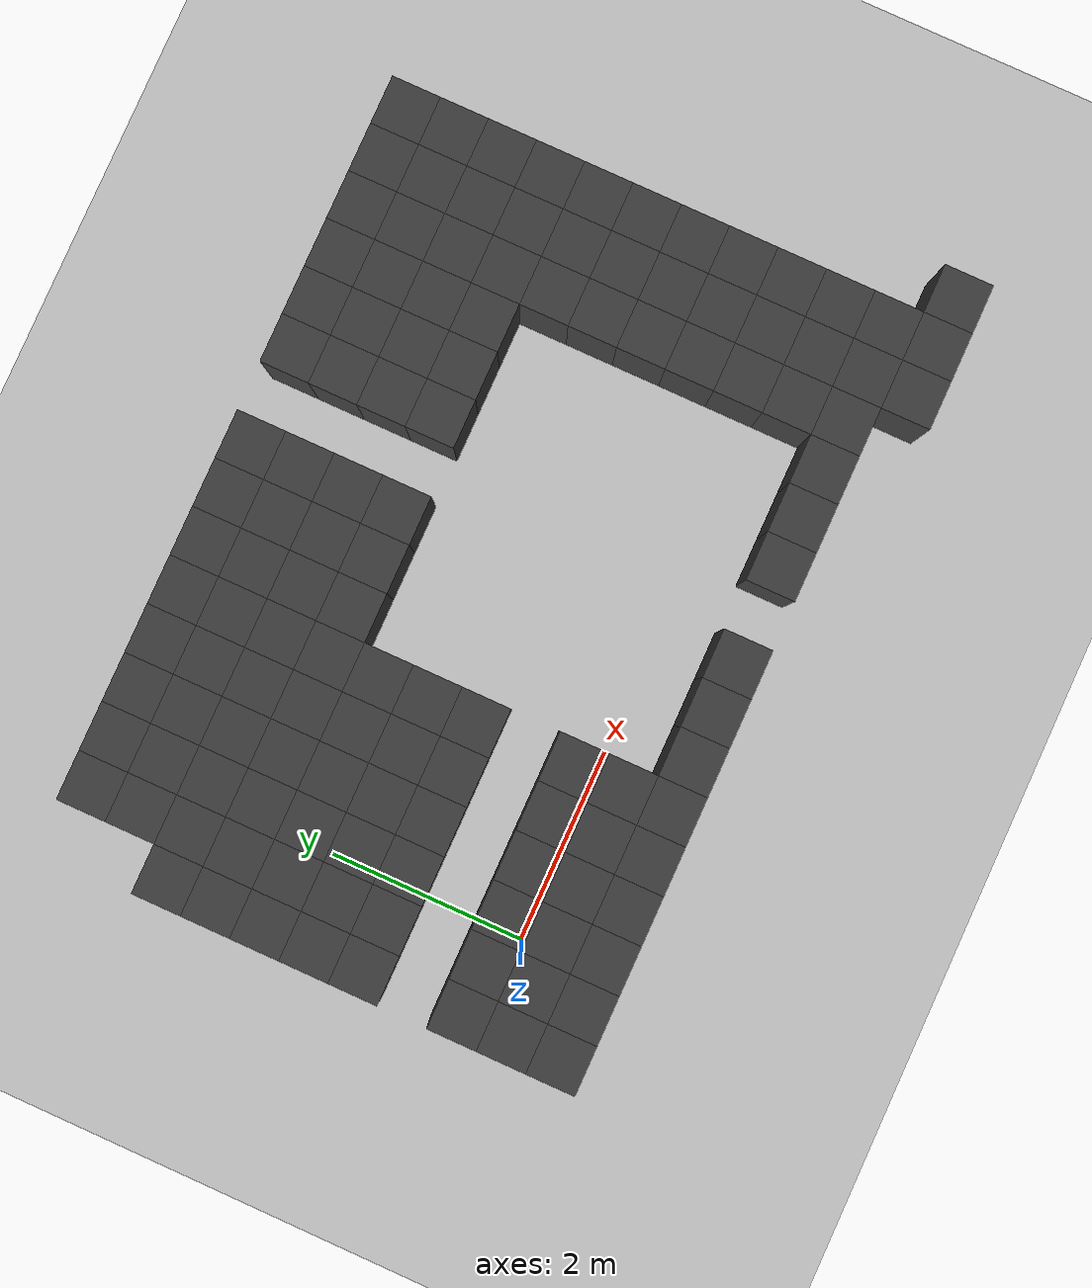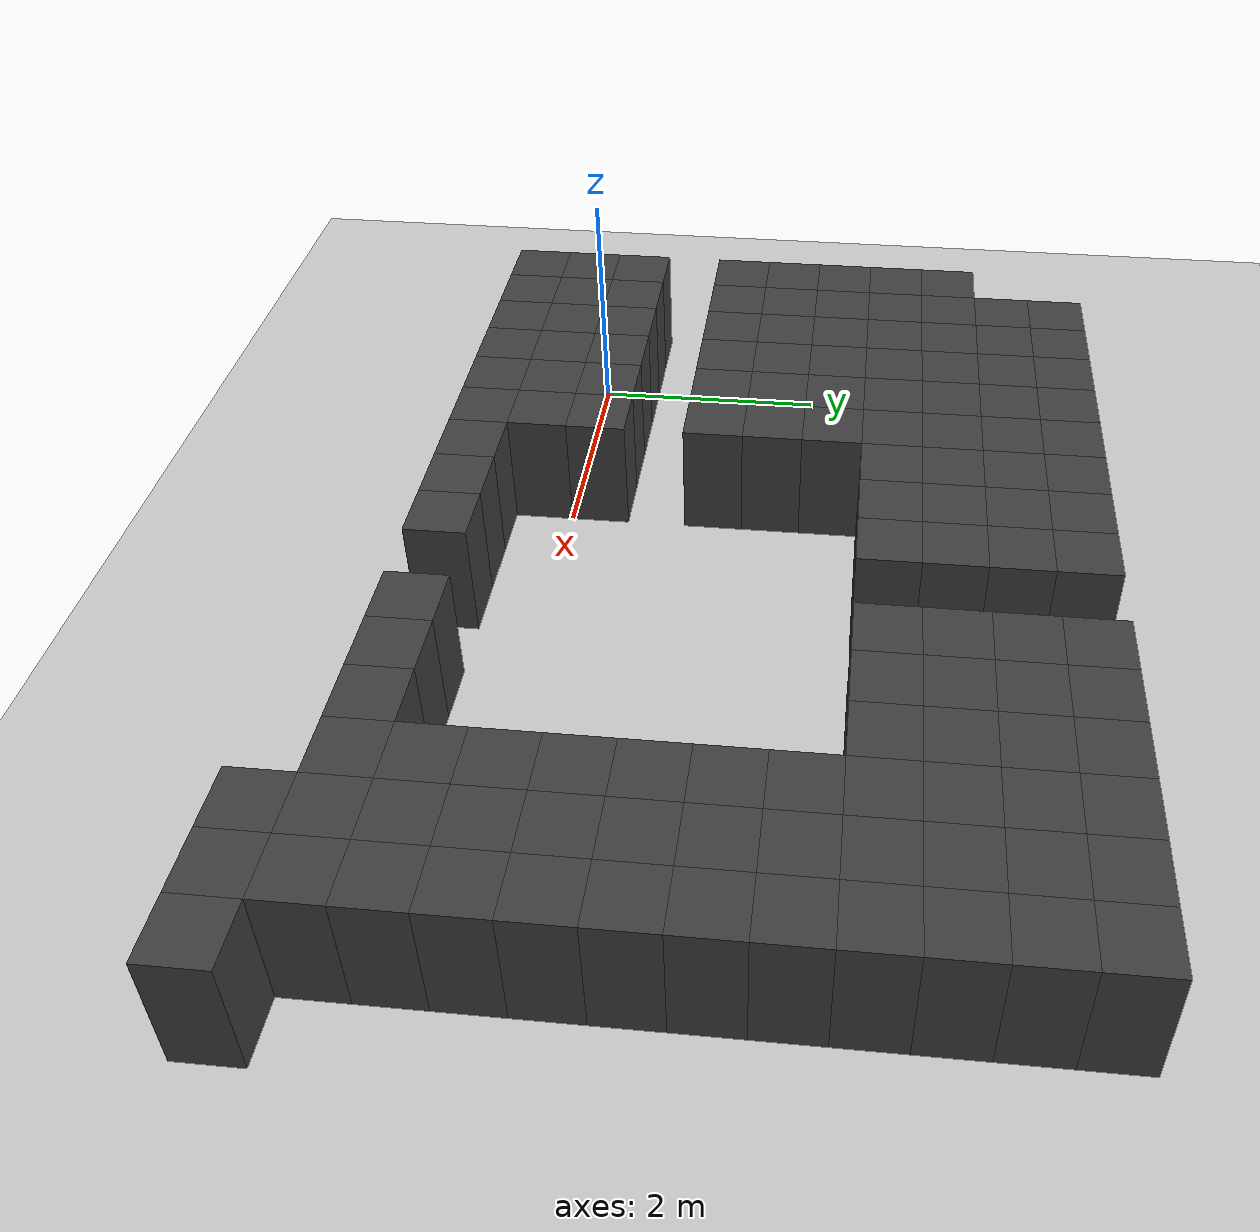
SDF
<sdf version="1.7">
 <world name="map_10726">
  <model name="ground_plane">
   <static>true</static>
   <link name="link">
    <collision name="collision">
     <geometry><plane><normal>0 0 1</normal><size>200 200</size></plane></geometry>
    </collision>
    <visual name="visual">
     <geometry><plane><normal>0 0 1</normal><size>200 200</size></plane></geometry>
     <material><ambient>0.8 0.8 0.8 1</ambient><diffuse>0.8 0.8 0.8 1</diffuse></material>
    </visual>
   </link>
  </model>
  <model name="maze_environment">
   <static>true</static>
   <link name="wall_751">
    <pose>-0.250 4.250 0.500 0 0 0</pose>
    <collision name="col"><geometry><box><size>0.5 0.5 1.0</size></box></geometry></collision>
    <visual name="vis">
     <geometry><box><size>0.5 0.5 1.0</size></box></geometry>
     <material><ambient>0.15 0.15 0.15 1</ambient><diffuse>0.25 0.25 0.25 1</diffuse></material>
    </visual>
   </link>
   <link name="wall_752">
    <pose>0.250 4.250 0.500 0 0 0</pose>
    <collision name="col"><geometry><box><size>0.5 0.5 1.0</size></box></geometry></collision>
    <visual name="vis">
     <geometry><box><size>0.5 0.5 1.0</size></box></geometry>
     <material><ambient>0.15 0.15 0.15 1</ambient><diffuse>0.25 0.25 0.25 1</diffuse></material>
    </visual>
   </link>
   <link name="wall_753">
    <pose>0.750 4.250 0.500 0 0 0</pose>
    <collision name="col"><geometry><box><size>0.5 0.5 1.0</size></box></geometry></collision>
    <visual name="vis">
     <geometry><box><size>0.5 0.5 1.0</size></box></geometry>
     <material><ambient>0.15 0.15 0.15 1</ambient><diffuse>0.25 0.25 0.25 1</diffuse></material>
    </visual>
   </link>
   <link name="wall_754">
    <pose>1.250 4.250 0.500 0 0 0</pose>
    <collision name="col"><geometry><box><size>0.5 0.5 1.0</size></box></geometry></collision>
    <visual name="vis">
     <geometry><box><size>0.5 0.5 1.0</size></box></geometry>
     <material><ambient>0.15 0.15 0.15 1</ambient><diffuse>0.25 0.25 0.25 1</diffuse></material>
    </visual>
   </link>
   <link name="wall_755">
    <pose>1.750 4.250 0.500 0 0 0</pose>
    <collision name="col"><geometry><box><size>0.5 0.5 1.0</size></box></geometry></collision>
    <visual name="vis">
     <geometry><box><size>0.5 0.5 1.0</size></box></geometry>
     <material><ambient>0.15 0.15 0.15 1</ambient><diffuse>0.25 0.25 0.25 1</diffuse></material>
    </visual>
   </link>
   <link name="wall_756">
    <pose>2.250 4.250 0.500 0 0 0</pose>
    <collision name="col"><geometry><box><size>0.5 0.5 1.0</size></box></geometry></collision>
    <visual name="vis">
     <geometry><box><size>0.5 0.5 1.0</size></box></geometry>
     <material><ambient>0.15 0.15 0.15 1</ambient><diffuse>0.25 0.25 0.25 1</diffuse></material>
    </visual>
   </link>
   <link name="wall_757">
    <pose>2.750 4.250 0.500 0 0 0</pose>
    <collision name="col"><geometry><box><size>0.5 0.5 1.0</size></box></geometry></collision>
    <visual name="vis">
     <geometry><box><size>0.5 0.5 1.0</size></box></geometry>
     <material><ambient>0.15 0.15 0.15 1</ambient><diffuse>0.25 0.25 0.25 1</diffuse></material>
    </visual>
   </link>
   <link name="wall_758">
    <pose>3.250 4.250 0.500 0 0 0</pose>
    <collision name="col"><geometry><box><size>0.5 0.5 1.0</size></box></geometry></collision>
    <visual name="vis">
     <geometry><box><size>0.5 0.5 1.0</size></box></geometry>
     <material><ambient>0.15 0.15 0.15 1</ambient><diffuse>0.25 0.25 0.25 1</diffuse></material>
    </visual>
   </link>
   <link name="wall_759">
    <pose>4.250 4.250 0.500 0 0 0</pose>
    <collision name="col"><geometry><box><size>0.5 0.5 1.0</size></box></geometry></collision>
    <visual name="vis">
     <geometry><box><size>0.5 0.5 1.0</size></box></geometry>
     <material><ambient>0.15 0.15 0.15 1</ambient><diffuse>0.25 0.25 0.25 1</diffuse></material>
    </visual>
   </link>
   <link name="wall_760">
    <pose>4.750 4.250 0.500 0 0 0</pose>
    <collision name="col"><geometry><box><size>0.5 0.5 1.0</size></box></geometry></collision>
    <visual name="vis">
     <geometry><box><size>0.5 0.5 1.0</size></box></geometry>
     <material><ambient>0.15 0.15 0.15 1</ambient><diffuse>0.25 0.25 0.25 1</diffuse></material>
    </visual>
   </link>
   <link name="wall_761">
    <pose>5.250 4.250 0.500 0 0 0</pose>
    <collision name="col"><geometry><box><size>0.5 0.5 1.0</size></box></geometry></collision>
    <visual name="vis">
     <geometry><box><size>0.5 0.5 1.0</size></box></geometry>
     <material><ambient>0.15 0.15 0.15 1</ambient><diffuse>0.25 0.25 0.25 1</diffuse></material>
    </visual>
   </link>
   <link name="wall_762">
    <pose>5.750 4.250 0.500 0 0 0</pose>
    <collision name="col"><geometry><box><size>0.5 0.5 1.0</size></box></geometry></collision>
    <visual name="vis">
     <geometry><box><size>0.5 0.5 1.0</size></box></geometry>
     <material><ambient>0.15 0.15 0.15 1</ambient><diffuse>0.25 0.25 0.25 1</diffuse></material>
    </visual>
   </link>
   <link name="wall_763">
    <pose>6.250 4.250 0.500 0 0 0</pose>
    <collision name="col"><geometry><box><size>0.5 0.5 1.0</size></box></geometry></collision>
    <visual name="vis">
     <geometry><box><size>0.5 0.5 1.0</size></box></geometry>
     <material><ambient>0.15 0.15 0.15 1</ambient><diffuse>0.25 0.25 0.25 1</diffuse></material>
    </visual>
   </link>
   <link name="wall_764">
    <pose>6.750 4.250 0.500 0 0 0</pose>
    <collision name="col"><geometry><box><size>0.5 0.5 1.0</size></box></geometry></collision>
    <visual name="vis">
     <geometry><box><size>0.5 0.5 1.0</size></box></geometry>
     <material><ambient>0.15 0.15 0.15 1</ambient><diffuse>0.25 0.25 0.25 1</diffuse></material>
    </visual>
   </link>
   <link name="wall_799">
    <pose>-0.250 3.750 0.500 0 0 0</pose>
    <collision name="col"><geometry><box><size>0.5 0.5 1.0</size></box></geometry></collision>
    <visual name="vis">
     <geometry><box><size>0.5 0.5 1.0</size></box></geometry>
     <material><ambient>0.15 0.15 0.15 1</ambient><diffuse>0.25 0.25 0.25 1</diffuse></material>
    </visual>
   </link>
   <link name="wall_800">
    <pose>0.250 3.750 0.500 0 0 0</pose>
    <collision name="col"><geometry><box><size>0.5 0.5 1.0</size></box></geometry></collision>
    <visual name="vis">
     <geometry><box><size>0.5 0.5 1.0</size></box></geometry>
     <material><ambient>0.15 0.15 0.15 1</ambient><diffuse>0.25 0.25 0.25 1</diffuse></material>
    </visual>
   </link>
   <link name="wall_801">
    <pose>0.750 3.750 0.500 0 0 0</pose>
    <collision name="col"><geometry><box><size>0.5 0.5 1.0</size></box></geometry></collision>
    <visual name="vis">
     <geometry><box><size>0.5 0.5 1.0</size></box></geometry>
     <material><ambient>0.15 0.15 0.15 1</ambient><diffuse>0.25 0.25 0.25 1</diffuse></material>
    </visual>
   </link>
   <link name="wall_802">
    <pose>1.250 3.750 0.500 0 0 0</pose>
    <collision name="col"><geometry><box><size>0.5 0.5 1.0</size></box></geometry></collision>
    <visual name="vis">
     <geometry><box><size>0.5 0.5 1.0</size></box></geometry>
     <material><ambient>0.15 0.15 0.15 1</ambient><diffuse>0.25 0.25 0.25 1</diffuse></material>
    </visual>
   </link>
   <link name="wall_803">
    <pose>1.750 3.750 0.500 0 0 0</pose>
    <collision name="col"><geometry><box><size>0.5 0.5 1.0</size></box></geometry></collision>
    <visual name="vis">
     <geometry><box><size>0.5 0.5 1.0</size></box></geometry>
     <material><ambient>0.15 0.15 0.15 1</ambient><diffuse>0.25 0.25 0.25 1</diffuse></material>
    </visual>
   </link>
   <link name="wall_804">
    <pose>2.250 3.750 0.500 0 0 0</pose>
    <collision name="col"><geometry><box><size>0.5 0.5 1.0</size></box></geometry></collision>
    <visual name="vis">
     <geometry><box><size>0.5 0.5 1.0</size></box></geometry>
     <material><ambient>0.15 0.15 0.15 1</ambient><diffuse>0.25 0.25 0.25 1</diffuse></material>
    </visual>
   </link>
   <link name="wall_805">
    <pose>2.750 3.750 0.500 0 0 0</pose>
    <collision name="col"><geometry><box><size>0.5 0.5 1.0</size></box></geometry></collision>
    <visual name="vis">
     <geometry><box><size>0.5 0.5 1.0</size></box></geometry>
     <material><ambient>0.15 0.15 0.15 1</ambient><diffuse>0.25 0.25 0.25 1</diffuse></material>
    </visual>
   </link>
   <link name="wall_806">
    <pose>3.250 3.750 0.500 0 0 0</pose>
    <collision name="col"><geometry><box><size>0.5 0.5 1.0</size></box></geometry></collision>
    <visual name="vis">
     <geometry><box><size>0.5 0.5 1.0</size></box></geometry>
     <material><ambient>0.15 0.15 0.15 1</ambient><diffuse>0.25 0.25 0.25 1</diffuse></material>
    </visual>
   </link>
   <link name="wall_807">
    <pose>4.250 3.750 0.500 0 0 0</pose>
    <collision name="col"><geometry><box><size>0.5 0.5 1.0</size></box></geometry></collision>
    <visual name="vis">
     <geometry><box><size>0.5 0.5 1.0</size></box></geometry>
     <material><ambient>0.15 0.15 0.15 1</ambient><diffuse>0.25 0.25 0.25 1</diffuse></material>
    </visual>
   </link>
   <link name="wall_808">
    <pose>4.750 3.750 0.500 0 0 0</pose>
    <collision name="col"><geometry><box><size>0.5 0.5 1.0</size></box></geometry></collision>
    <visual name="vis">
     <geometry><box><size>0.5 0.5 1.0</size></box></geometry>
     <material><ambient>0.15 0.15 0.15 1</ambient><diffuse>0.25 0.25 0.25 1</diffuse></material>
    </visual>
   </link>
   <link name="wall_809">
    <pose>5.250 3.750 0.500 0 0 0</pose>
    <collision name="col"><geometry><box><size>0.5 0.5 1.0</size></box></geometry></collision>
    <visual name="vis">
     <geometry><box><size>0.5 0.5 1.0</size></box></geometry>
     <material><ambient>0.15 0.15 0.15 1</ambient><diffuse>0.25 0.25 0.25 1</diffuse></material>
    </visual>
   </link>
   <link name="wall_810">
    <pose>5.750 3.750 0.500 0 0 0</pose>
    <collision name="col"><geometry><box><size>0.5 0.5 1.0</size></box></geometry></collision>
    <visual name="vis">
     <geometry><box><size>0.5 0.5 1.0</size></box></geometry>
     <material><ambient>0.15 0.15 0.15 1</ambient><diffuse>0.25 0.25 0.25 1</diffuse></material>
    </visual>
   </link>
   <link name="wall_811">
    <pose>6.250 3.750 0.500 0 0 0</pose>
    <collision name="col"><geometry><box><size>0.5 0.5 1.0</size></box></geometry></collision>
    <visual name="vis">
     <geometry><box><size>0.5 0.5 1.0</size></box></geometry>
     <material><ambient>0.15 0.15 0.15 1</ambient><diffuse>0.25 0.25 0.25 1</diffuse></material>
    </visual>
   </link>
   <link name="wall_812">
    <pose>6.750 3.750 0.500 0 0 0</pose>
    <collision name="col"><geometry><box><size>0.5 0.5 1.0</size></box></geometry></collision>
    <visual name="vis">
     <geometry><box><size>0.5 0.5 1.0</size></box></geometry>
     <material><ambient>0.15 0.15 0.15 1</ambient><diffuse>0.25 0.25 0.25 1</diffuse></material>
    </visual>
   </link>
   <link name="wall_846">
    <pose>-0.750 3.250 0.500 0 0 0</pose>
    <collision name="col"><geometry><box><size>0.5 0.5 1.0</size></box></geometry></collision>
    <visual name="vis">
     <geometry><box><size>0.5 0.5 1.0</size></box></geometry>
     <material><ambient>0.15 0.15 0.15 1</ambient><diffuse>0.25 0.25 0.25 1</diffuse></material>
    </visual>
   </link>
   <link name="wall_847">
    <pose>-0.250 3.250 0.500 0 0 0</pose>
    <collision name="col"><geometry><box><size>0.5 0.5 1.0</size></box></geometry></collision>
    <visual name="vis">
     <geometry><box><size>0.5 0.5 1.0</size></box></geometry>
     <material><ambient>0.15 0.15 0.15 1</ambient><diffuse>0.25 0.25 0.25 1</diffuse></material>
    </visual>
   </link>
   <link name="wall_848">
    <pose>0.250 3.250 0.500 0 0 0</pose>
    <collision name="col"><geometry><box><size>0.5 0.5 1.0</size></box></geometry></collision>
    <visual name="vis">
     <geometry><box><size>0.5 0.5 1.0</size></box></geometry>
     <material><ambient>0.15 0.15 0.15 1</ambient><diffuse>0.25 0.25 0.25 1</diffuse></material>
    </visual>
   </link>
   <link name="wall_849">
    <pose>0.750 3.250 0.500 0 0 0</pose>
    <collision name="col"><geometry><box><size>0.5 0.5 1.0</size></box></geometry></collision>
    <visual name="vis">
     <geometry><box><size>0.5 0.5 1.0</size></box></geometry>
     <material><ambient>0.15 0.15 0.15 1</ambient><diffuse>0.25 0.25 0.25 1</diffuse></material>
    </visual>
   </link>
   <link name="wall_850">
    <pose>1.250 3.250 0.500 0 0 0</pose>
    <collision name="col"><geometry><box><size>0.5 0.5 1.0</size></box></geometry></collision>
    <visual name="vis">
     <geometry><box><size>0.5 0.5 1.0</size></box></geometry>
     <material><ambient>0.15 0.15 0.15 1</ambient><diffuse>0.25 0.25 0.25 1</diffuse></material>
    </visual>
   </link>
   <link name="wall_851">
    <pose>1.750 3.250 0.500 0 0 0</pose>
    <collision name="col"><geometry><box><size>0.5 0.5 1.0</size></box></geometry></collision>
    <visual name="vis">
     <geometry><box><size>0.5 0.5 1.0</size></box></geometry>
     <material><ambient>0.15 0.15 0.15 1</ambient><diffuse>0.25 0.25 0.25 1</diffuse></material>
    </visual>
   </link>
   <link name="wall_852">
    <pose>2.250 3.250 0.500 0 0 0</pose>
    <collision name="col"><geometry><box><size>0.5 0.5 1.0</size></box></geometry></collision>
    <visual name="vis">
     <geometry><box><size>0.5 0.5 1.0</size></box></geometry>
     <material><ambient>0.15 0.15 0.15 1</ambient><diffuse>0.25 0.25 0.25 1</diffuse></material>
    </visual>
   </link>
   <link name="wall_853">
    <pose>2.750 3.250 0.500 0 0 0</pose>
    <collision name="col"><geometry><box><size>0.5 0.5 1.0</size></box></geometry></collision>
    <visual name="vis">
     <geometry><box><size>0.5 0.5 1.0</size></box></geometry>
     <material><ambient>0.15 0.15 0.15 1</ambient><diffuse>0.25 0.25 0.25 1</diffuse></material>
    </visual>
   </link>
   <link name="wall_854">
    <pose>3.250 3.250 0.500 0 0 0</pose>
    <collision name="col"><geometry><box><size>0.5 0.5 1.0</size></box></geometry></collision>
    <visual name="vis">
     <geometry><box><size>0.5 0.5 1.0</size></box></geometry>
     <material><ambient>0.15 0.15 0.15 1</ambient><diffuse>0.25 0.25 0.25 1</diffuse></material>
    </visual>
   </link>
   <link name="wall_855">
    <pose>4.250 3.250 0.500 0 0 0</pose>
    <collision name="col"><geometry><box><size>0.5 0.5 1.0</size></box></geometry></collision>
    <visual name="vis">
     <geometry><box><size>0.5 0.5 1.0</size></box></geometry>
     <material><ambient>0.15 0.15 0.15 1</ambient><diffuse>0.25 0.25 0.25 1</diffuse></material>
    </visual>
   </link>
   <link name="wall_856">
    <pose>4.750 3.250 0.500 0 0 0</pose>
    <collision name="col"><geometry><box><size>0.5 0.5 1.0</size></box></geometry></collision>
    <visual name="vis">
     <geometry><box><size>0.5 0.5 1.0</size></box></geometry>
     <material><ambient>0.15 0.15 0.15 1</ambient><diffuse>0.25 0.25 0.25 1</diffuse></material>
    </visual>
   </link>
   <link name="wall_857">
    <pose>5.250 3.250 0.500 0 0 0</pose>
    <collision name="col"><geometry><box><size>0.5 0.5 1.0</size></box></geometry></collision>
    <visual name="vis">
     <geometry><box><size>0.5 0.5 1.0</size></box></geometry>
     <material><ambient>0.15 0.15 0.15 1</ambient><diffuse>0.25 0.25 0.25 1</diffuse></material>
    </visual>
   </link>
   <link name="wall_858">
    <pose>5.750 3.250 0.500 0 0 0</pose>
    <collision name="col"><geometry><box><size>0.5 0.5 1.0</size></box></geometry></collision>
    <visual name="vis">
     <geometry><box><size>0.5 0.5 1.0</size></box></geometry>
     <material><ambient>0.15 0.15 0.15 1</ambient><diffuse>0.25 0.25 0.25 1</diffuse></material>
    </visual>
   </link>
   <link name="wall_859">
    <pose>6.250 3.250 0.500 0 0 0</pose>
    <collision name="col"><geometry><box><size>0.5 0.5 1.0</size></box></geometry></collision>
    <visual name="vis">
     <geometry><box><size>0.5 0.5 1.0</size></box></geometry>
     <material><ambient>0.15 0.15 0.15 1</ambient><diffuse>0.25 0.25 0.25 1</diffuse></material>
    </visual>
   </link>
   <link name="wall_860">
    <pose>6.750 3.250 0.500 0 0 0</pose>
    <collision name="col"><geometry><box><size>0.5 0.5 1.0</size></box></geometry></collision>
    <visual name="vis">
     <geometry><box><size>0.5 0.5 1.0</size></box></geometry>
     <material><ambient>0.15 0.15 0.15 1</ambient><diffuse>0.25 0.25 0.25 1</diffuse></material>
    </visual>
   </link>
   <link name="wall_894">
    <pose>-0.750 2.750 0.500 0 0 0</pose>
    <collision name="col"><geometry><box><size>0.5 0.5 1.0</size></box></geometry></collision>
    <visual name="vis">
     <geometry><box><size>0.5 0.5 1.0</size></box></geometry>
     <material><ambient>0.15 0.15 0.15 1</ambient><diffuse>0.25 0.25 0.25 1</diffuse></material>
    </visual>
   </link>
   <link name="wall_895">
    <pose>-0.250 2.750 0.500 0 0 0</pose>
    <collision name="col"><geometry><box><size>0.5 0.5 1.0</size></box></geometry></collision>
    <visual name="vis">
     <geometry><box><size>0.5 0.5 1.0</size></box></geometry>
     <material><ambient>0.15 0.15 0.15 1</ambient><diffuse>0.25 0.25 0.25 1</diffuse></material>
    </visual>
   </link>
   <link name="wall_896">
    <pose>0.250 2.750 0.500 0 0 0</pose>
    <collision name="col"><geometry><box><size>0.5 0.5 1.0</size></box></geometry></collision>
    <visual name="vis">
     <geometry><box><size>0.5 0.5 1.0</size></box></geometry>
     <material><ambient>0.15 0.15 0.15 1</ambient><diffuse>0.25 0.25 0.25 1</diffuse></material>
    </visual>
   </link>
   <link name="wall_897">
    <pose>0.750 2.750 0.500 0 0 0</pose>
    <collision name="col"><geometry><box><size>0.5 0.5 1.0</size></box></geometry></collision>
    <visual name="vis">
     <geometry><box><size>0.5 0.5 1.0</size></box></geometry>
     <material><ambient>0.15 0.15 0.15 1</ambient><diffuse>0.25 0.25 0.25 1</diffuse></material>
    </visual>
   </link>
   <link name="wall_898">
    <pose>1.250 2.750 0.500 0 0 0</pose>
    <collision name="col"><geometry><box><size>0.5 0.5 1.0</size></box></geometry></collision>
    <visual name="vis">
     <geometry><box><size>0.5 0.5 1.0</size></box></geometry>
     <material><ambient>0.15 0.15 0.15 1</ambient><diffuse>0.25 0.25 0.25 1</diffuse></material>
    </visual>
   </link>
   <link name="wall_899">
    <pose>1.750 2.750 0.500 0 0 0</pose>
    <collision name="col"><geometry><box><size>0.5 0.5 1.0</size></box></geometry></collision>
    <visual name="vis">
     <geometry><box><size>0.5 0.5 1.0</size></box></geometry>
     <material><ambient>0.15 0.15 0.15 1</ambient><diffuse>0.25 0.25 0.25 1</diffuse></material>
    </visual>
   </link>
   <link name="wall_900">
    <pose>2.250 2.750 0.500 0 0 0</pose>
    <collision name="col"><geometry><box><size>0.5 0.5 1.0</size></box></geometry></collision>
    <visual name="vis">
     <geometry><box><size>0.5 0.5 1.0</size></box></geometry>
     <material><ambient>0.15 0.15 0.15 1</ambient><diffuse>0.25 0.25 0.25 1</diffuse></material>
    </visual>
   </link>
   <link name="wall_901">
    <pose>2.750 2.750 0.500 0 0 0</pose>
    <collision name="col"><geometry><box><size>0.5 0.5 1.0</size></box></geometry></collision>
    <visual name="vis">
     <geometry><box><size>0.5 0.5 1.0</size></box></geometry>
     <material><ambient>0.15 0.15 0.15 1</ambient><diffuse>0.25 0.25 0.25 1</diffuse></material>
    </visual>
   </link>
   <link name="wall_902">
    <pose>3.250 2.750 0.500 0 0 0</pose>
    <collision name="col"><geometry><box><size>0.5 0.5 1.0</size></box></geometry></collision>
    <visual name="vis">
     <geometry><box><size>0.5 0.5 1.0</size></box></geometry>
     <material><ambient>0.15 0.15 0.15 1</ambient><diffuse>0.25 0.25 0.25 1</diffuse></material>
    </visual>
   </link>
   <link name="wall_903">
    <pose>4.250 2.750 0.500 0 0 0</pose>
    <collision name="col"><geometry><box><size>0.5 0.5 1.0</size></box></geometry></collision>
    <visual name="vis">
     <geometry><box><size>0.5 0.5 1.0</size></box></geometry>
     <material><ambient>0.15 0.15 0.15 1</ambient><diffuse>0.25 0.25 0.25 1</diffuse></material>
    </visual>
   </link>
   <link name="wall_904">
    <pose>4.750 2.750 0.500 0 0 0</pose>
    <collision name="col"><geometry><box><size>0.5 0.5 1.0</size></box></geometry></collision>
    <visual name="vis">
     <geometry><box><size>0.5 0.5 1.0</size></box></geometry>
     <material><ambient>0.15 0.15 0.15 1</ambient><diffuse>0.25 0.25 0.25 1</diffuse></material>
    </visual>
   </link>
   <link name="wall_905">
    <pose>5.250 2.750 0.500 0 0 0</pose>
    <collision name="col"><geometry><box><size>0.5 0.5 1.0</size></box></geometry></collision>
    <visual name="vis">
     <geometry><box><size>0.5 0.5 1.0</size></box></geometry>
     <material><ambient>0.15 0.15 0.15 1</ambient><diffuse>0.25 0.25 0.25 1</diffuse></material>
    </visual>
   </link>
   <link name="wall_906">
    <pose>5.750 2.750 0.500 0 0 0</pose>
    <collision name="col"><geometry><box><size>0.5 0.5 1.0</size></box></geometry></collision>
    <visual name="vis">
     <geometry><box><size>0.5 0.5 1.0</size></box></geometry>
     <material><ambient>0.15 0.15 0.15 1</ambient><diffuse>0.25 0.25 0.25 1</diffuse></material>
    </visual>
   </link>
   <link name="wall_907">
    <pose>6.250 2.750 0.500 0 0 0</pose>
    <collision name="col"><geometry><box><size>0.5 0.5 1.0</size></box></geometry></collision>
    <visual name="vis">
     <geometry><box><size>0.5 0.5 1.0</size></box></geometry>
     <material><ambient>0.15 0.15 0.15 1</ambient><diffuse>0.25 0.25 0.25 1</diffuse></material>
    </visual>
   </link>
   <link name="wall_908">
    <pose>6.750 2.750 0.500 0 0 0</pose>
    <collision name="col"><geometry><box><size>0.5 0.5 1.0</size></box></geometry></collision>
    <visual name="vis">
     <geometry><box><size>0.5 0.5 1.0</size></box></geometry>
     <material><ambient>0.15 0.15 0.15 1</ambient><diffuse>0.25 0.25 0.25 1</diffuse></material>
    </visual>
   </link>
   <link name="wall_942">
    <pose>-0.750 2.250 0.500 0 0 0</pose>
    <collision name="col"><geometry><box><size>0.5 0.5 1.0</size></box></geometry></collision>
    <visual name="vis">
     <geometry><box><size>0.5 0.5 1.0</size></box></geometry>
     <material><ambient>0.15 0.15 0.15 1</ambient><diffuse>0.25 0.25 0.25 1</diffuse></material>
    </visual>
   </link>
   <link name="wall_943">
    <pose>-0.250 2.250 0.500 0 0 0</pose>
    <collision name="col"><geometry><box><size>0.5 0.5 1.0</size></box></geometry></collision>
    <visual name="vis">
     <geometry><box><size>0.5 0.5 1.0</size></box></geometry>
     <material><ambient>0.15 0.15 0.15 1</ambient><diffuse>0.25 0.25 0.25 1</diffuse></material>
    </visual>
   </link>
   <link name="wall_944">
    <pose>0.250 2.250 0.500 0 0 0</pose>
    <collision name="col"><geometry><box><size>0.5 0.5 1.0</size></box></geometry></collision>
    <visual name="vis">
     <geometry><box><size>0.5 0.5 1.0</size></box></geometry>
     <material><ambient>0.15 0.15 0.15 1</ambient><diffuse>0.25 0.25 0.25 1</diffuse></material>
    </visual>
   </link>
   <link name="wall_945">
    <pose>0.750 2.250 0.500 0 0 0</pose>
    <collision name="col"><geometry><box><size>0.5 0.5 1.0</size></box></geometry></collision>
    <visual name="vis">
     <geometry><box><size>0.5 0.5 1.0</size></box></geometry>
     <material><ambient>0.15 0.15 0.15 1</ambient><diffuse>0.25 0.25 0.25 1</diffuse></material>
    </visual>
   </link>
   <link name="wall_946">
    <pose>1.250 2.250 0.500 0 0 0</pose>
    <collision name="col"><geometry><box><size>0.5 0.5 1.0</size></box></geometry></collision>
    <visual name="vis">
     <geometry><box><size>0.5 0.5 1.0</size></box></geometry>
     <material><ambient>0.15 0.15 0.15 1</ambient><diffuse>0.25 0.25 0.25 1</diffuse></material>
    </visual>
   </link>
   <link name="wall_947">
    <pose>1.750 2.250 0.500 0 0 0</pose>
    <collision name="col"><geometry><box><size>0.5 0.5 1.0</size></box></geometry></collision>
    <visual name="vis">
     <geometry><box><size>0.5 0.5 1.0</size></box></geometry>
     <material><ambient>0.15 0.15 0.15 1</ambient><diffuse>0.25 0.25 0.25 1</diffuse></material>
    </visual>
   </link>
   <link name="wall_948">
    <pose>5.750 2.250 0.500 0 0 0</pose>
    <collision name="col"><geometry><box><size>0.5 0.5 1.0</size></box></geometry></collision>
    <visual name="vis">
     <geometry><box><size>0.5 0.5 1.0</size></box></geometry>
     <material><ambient>0.15 0.15 0.15 1</ambient><diffuse>0.25 0.25 0.25 1</diffuse></material>
    </visual>
   </link>
   <link name="wall_949">
    <pose>6.250 2.250 0.500 0 0 0</pose>
    <collision name="col"><geometry><box><size>0.5 0.5 1.0</size></box></geometry></collision>
    <visual name="vis">
     <geometry><box><size>0.5 0.5 1.0</size></box></geometry>
     <material><ambient>0.15 0.15 0.15 1</ambient><diffuse>0.25 0.25 0.25 1</diffuse></material>
    </visual>
   </link>
   <link name="wall_950">
    <pose>6.750 2.250 0.500 0 0 0</pose>
    <collision name="col"><geometry><box><size>0.5 0.5 1.0</size></box></geometry></collision>
    <visual name="vis">
     <geometry><box><size>0.5 0.5 1.0</size></box></geometry>
     <material><ambient>0.15 0.15 0.15 1</ambient><diffuse>0.25 0.25 0.25 1</diffuse></material>
    </visual>
   </link>
   <link name="wall_984">
    <pose>-0.750 1.750 0.500 0 0 0</pose>
    <collision name="col"><geometry><box><size>0.5 0.5 1.0</size></box></geometry></collision>
    <visual name="vis">
     <geometry><box><size>0.5 0.5 1.0</size></box></geometry>
     <material><ambient>0.15 0.15 0.15 1</ambient><diffuse>0.25 0.25 0.25 1</diffuse></material>
    </visual>
   </link>
   <link name="wall_985">
    <pose>-0.250 1.750 0.500 0 0 0</pose>
    <collision name="col"><geometry><box><size>0.5 0.5 1.0</size></box></geometry></collision>
    <visual name="vis">
     <geometry><box><size>0.5 0.5 1.0</size></box></geometry>
     <material><ambient>0.15 0.15 0.15 1</ambient><diffuse>0.25 0.25 0.25 1</diffuse></material>
    </visual>
   </link>
   <link name="wall_986">
    <pose>0.250 1.750 0.500 0 0 0</pose>
    <collision name="col"><geometry><box><size>0.5 0.5 1.0</size></box></geometry></collision>
    <visual name="vis">
     <geometry><box><size>0.5 0.5 1.0</size></box></geometry>
     <material><ambient>0.15 0.15 0.15 1</ambient><diffuse>0.25 0.25 0.25 1</diffuse></material>
    </visual>
   </link>
   <link name="wall_987">
    <pose>0.750 1.750 0.500 0 0 0</pose>
    <collision name="col"><geometry><box><size>0.5 0.5 1.0</size></box></geometry></collision>
    <visual name="vis">
     <geometry><box><size>0.5 0.5 1.0</size></box></geometry>
     <material><ambient>0.15 0.15 0.15 1</ambient><diffuse>0.25 0.25 0.25 1</diffuse></material>
    </visual>
   </link>
   <link name="wall_988">
    <pose>1.250 1.750 0.500 0 0 0</pose>
    <collision name="col"><geometry><box><size>0.5 0.5 1.0</size></box></geometry></collision>
    <visual name="vis">
     <geometry><box><size>0.5 0.5 1.0</size></box></geometry>
     <material><ambient>0.15 0.15 0.15 1</ambient><diffuse>0.25 0.25 0.25 1</diffuse></material>
    </visual>
   </link>
   <link name="wall_989">
    <pose>1.750 1.750 0.500 0 0 0</pose>
    <collision name="col"><geometry><box><size>0.5 0.5 1.0</size></box></geometry></collision>
    <visual name="vis">
     <geometry><box><size>0.5 0.5 1.0</size></box></geometry>
     <material><ambient>0.15 0.15 0.15 1</ambient><diffuse>0.25 0.25 0.25 1</diffuse></material>
    </visual>
   </link>
   <link name="wall_990">
    <pose>5.750 1.750 0.500 0 0 0</pose>
    <collision name="col"><geometry><box><size>0.5 0.5 1.0</size></box></geometry></collision>
    <visual name="vis">
     <geometry><box><size>0.5 0.5 1.0</size></box></geometry>
     <material><ambient>0.15 0.15 0.15 1</ambient><diffuse>0.25 0.25 0.25 1</diffuse></material>
    </visual>
   </link>
   <link name="wall_991">
    <pose>6.250 1.750 0.500 0 0 0</pose>
    <collision name="col"><geometry><box><size>0.5 0.5 1.0</size></box></geometry></collision>
    <visual name="vis">
     <geometry><box><size>0.5 0.5 1.0</size></box></geometry>
     <material><ambient>0.15 0.15 0.15 1</ambient><diffuse>0.25 0.25 0.25 1</diffuse></material>
    </visual>
   </link>
   <link name="wall_992">
    <pose>6.750 1.750 0.500 0 0 0</pose>
    <collision name="col"><geometry><box><size>0.5 0.5 1.0</size></box></geometry></collision>
    <visual name="vis">
     <geometry><box><size>0.5 0.5 1.0</size></box></geometry>
     <material><ambient>0.15 0.15 0.15 1</ambient><diffuse>0.25 0.25 0.25 1</diffuse></material>
    </visual>
   </link>
   <link name="wall_1026">
    <pose>-0.750 1.250 0.500 0 0 0</pose>
    <collision name="col"><geometry><box><size>0.5 0.5 1.0</size></box></geometry></collision>
    <visual name="vis">
     <geometry><box><size>0.5 0.5 1.0</size></box></geometry>
     <material><ambient>0.15 0.15 0.15 1</ambient><diffuse>0.25 0.25 0.25 1</diffuse></material>
    </visual>
   </link>
   <link name="wall_1027">
    <pose>-0.250 1.250 0.500 0 0 0</pose>
    <collision name="col"><geometry><box><size>0.5 0.5 1.0</size></box></geometry></collision>
    <visual name="vis">
     <geometry><box><size>0.5 0.5 1.0</size></box></geometry>
     <material><ambient>0.15 0.15 0.15 1</ambient><diffuse>0.25 0.25 0.25 1</diffuse></material>
    </visual>
   </link>
   <link name="wall_1028">
    <pose>0.250 1.250 0.500 0 0 0</pose>
    <collision name="col"><geometry><box><size>0.5 0.5 1.0</size></box></geometry></collision>
    <visual name="vis">
     <geometry><box><size>0.5 0.5 1.0</size></box></geometry>
     <material><ambient>0.15 0.15 0.15 1</ambient><diffuse>0.25 0.25 0.25 1</diffuse></material>
    </visual>
   </link>
   <link name="wall_1029">
    <pose>0.750 1.250 0.500 0 0 0</pose>
    <collision name="col"><geometry><box><size>0.5 0.5 1.0</size></box></geometry></collision>
    <visual name="vis">
     <geometry><box><size>0.5 0.5 1.0</size></box></geometry>
     <material><ambient>0.15 0.15 0.15 1</ambient><diffuse>0.25 0.25 0.25 1</diffuse></material>
    </visual>
   </link>
   <link name="wall_1030">
    <pose>1.250 1.250 0.500 0 0 0</pose>
    <collision name="col"><geometry><box><size>0.5 0.5 1.0</size></box></geometry></collision>
    <visual name="vis">
     <geometry><box><size>0.5 0.5 1.0</size></box></geometry>
     <material><ambient>0.15 0.15 0.15 1</ambient><diffuse>0.25 0.25 0.25 1</diffuse></material>
    </visual>
   </link>
   <link name="wall_1031">
    <pose>1.750 1.250 0.500 0 0 0</pose>
    <collision name="col"><geometry><box><size>0.5 0.5 1.0</size></box></geometry></collision>
    <visual name="vis">
     <geometry><box><size>0.5 0.5 1.0</size></box></geometry>
     <material><ambient>0.15 0.15 0.15 1</ambient><diffuse>0.25 0.25 0.25 1</diffuse></material>
    </visual>
   </link>
   <link name="wall_1032">
    <pose>5.750 1.250 0.500 0 0 0</pose>
    <collision name="col"><geometry><box><size>0.5 0.5 1.0</size></box></geometry></collision>
    <visual name="vis">
     <geometry><box><size>0.5 0.5 1.0</size></box></geometry>
     <material><ambient>0.15 0.15 0.15 1</ambient><diffuse>0.25 0.25 0.25 1</diffuse></material>
    </visual>
   </link>
   <link name="wall_1033">
    <pose>6.250 1.250 0.500 0 0 0</pose>
    <collision name="col"><geometry><box><size>0.5 0.5 1.0</size></box></geometry></collision>
    <visual name="vis">
     <geometry><box><size>0.5 0.5 1.0</size></box></geometry>
     <material><ambient>0.15 0.15 0.15 1</ambient><diffuse>0.25 0.25 0.25 1</diffuse></material>
    </visual>
   </link>
   <link name="wall_1034">
    <pose>6.750 1.250 0.500 0 0 0</pose>
    <collision name="col"><geometry><box><size>0.5 0.5 1.0</size></box></geometry></collision>
    <visual name="vis">
     <geometry><box><size>0.5 0.5 1.0</size></box></geometry>
     <material><ambient>0.15 0.15 0.15 1</ambient><diffuse>0.25 0.25 0.25 1</diffuse></material>
    </visual>
   </link>
   <link name="wall_1064">
    <pose>5.750 0.750 0.500 0 0 0</pose>
    <collision name="col"><geometry><box><size>0.5 0.5 1.0</size></box></geometry></collision>
    <visual name="vis">
     <geometry><box><size>0.5 0.5 1.0</size></box></geometry>
     <material><ambient>0.15 0.15 0.15 1</ambient><diffuse>0.25 0.25 0.25 1</diffuse></material>
    </visual>
   </link>
   <link name="wall_1065">
    <pose>6.250 0.750 0.500 0 0 0</pose>
    <collision name="col"><geometry><box><size>0.5 0.5 1.0</size></box></geometry></collision>
    <visual name="vis">
     <geometry><box><size>0.5 0.5 1.0</size></box></geometry>
     <material><ambient>0.15 0.15 0.15 1</ambient><diffuse>0.25 0.25 0.25 1</diffuse></material>
    </visual>
   </link>
   <link name="wall_1066">
    <pose>6.750 0.750 0.500 0 0 0</pose>
    <collision name="col"><geometry><box><size>0.5 0.5 1.0</size></box></geometry></collision>
    <visual name="vis">
     <geometry><box><size>0.5 0.5 1.0</size></box></geometry>
     <material><ambient>0.15 0.15 0.15 1</ambient><diffuse>0.25 0.25 0.25 1</diffuse></material>
    </visual>
   </link>
   <link name="wall_1099">
    <pose>-0.750 0.250 0.500 0 0 0</pose>
    <collision name="col"><geometry><box><size>0.5 0.5 1.0</size></box></geometry></collision>
    <visual name="vis">
     <geometry><box><size>0.5 0.5 1.0</size></box></geometry>
     <material><ambient>0.15 0.15 0.15 1</ambient><diffuse>0.25 0.25 0.25 1</diffuse></material>
    </visual>
   </link>
   <link name="wall_1100">
    <pose>-0.250 0.250 0.500 0 0 0</pose>
    <collision name="col"><geometry><box><size>0.5 0.5 1.0</size></box></geometry></collision>
    <visual name="vis">
     <geometry><box><size>0.5 0.5 1.0</size></box></geometry>
     <material><ambient>0.15 0.15 0.15 1</ambient><diffuse>0.25 0.25 0.25 1</diffuse></material>
    </visual>
   </link>
   <link name="wall_1101">
    <pose>0.250 0.250 0.500 0 0 0</pose>
    <collision name="col"><geometry><box><size>0.5 0.5 1.0</size></box></geometry></collision>
    <visual name="vis">
     <geometry><box><size>0.5 0.5 1.0</size></box></geometry>
     <material><ambient>0.15 0.15 0.15 1</ambient><diffuse>0.25 0.25 0.25 1</diffuse></material>
    </visual>
   </link>
   <link name="wall_1102">
    <pose>0.750 0.250 0.500 0 0 0</pose>
    <collision name="col"><geometry><box><size>0.5 0.5 1.0</size></box></geometry></collision>
    <visual name="vis">
     <geometry><box><size>0.5 0.5 1.0</size></box></geometry>
     <material><ambient>0.15 0.15 0.15 1</ambient><diffuse>0.25 0.25 0.25 1</diffuse></material>
    </visual>
   </link>
   <link name="wall_1103">
    <pose>1.250 0.250 0.500 0 0 0</pose>
    <collision name="col"><geometry><box><size>0.5 0.5 1.0</size></box></geometry></collision>
    <visual name="vis">
     <geometry><box><size>0.5 0.5 1.0</size></box></geometry>
     <material><ambient>0.15 0.15 0.15 1</ambient><diffuse>0.25 0.25 0.25 1</diffuse></material>
    </visual>
   </link>
   <link name="wall_1104">
    <pose>1.750 0.250 0.500 0 0 0</pose>
    <collision name="col"><geometry><box><size>0.5 0.5 1.0</size></box></geometry></collision>
    <visual name="vis">
     <geometry><box><size>0.5 0.5 1.0</size></box></geometry>
     <material><ambient>0.15 0.15 0.15 1</ambient><diffuse>0.25 0.25 0.25 1</diffuse></material>
    </visual>
   </link>
   <link name="wall_1105">
    <pose>5.750 0.250 0.500 0 0 0</pose>
    <collision name="col"><geometry><box><size>0.5 0.5 1.0</size></box></geometry></collision>
    <visual name="vis">
     <geometry><box><size>0.5 0.5 1.0</size></box></geometry>
     <material><ambient>0.15 0.15 0.15 1</ambient><diffuse>0.25 0.25 0.25 1</diffuse></material>
    </visual>
   </link>
   <link name="wall_1106">
    <pose>6.250 0.250 0.500 0 0 0</pose>
    <collision name="col"><geometry><box><size>0.5 0.5 1.0</size></box></geometry></collision>
    <visual name="vis">
     <geometry><box><size>0.5 0.5 1.0</size></box></geometry>
     <material><ambient>0.15 0.15 0.15 1</ambient><diffuse>0.25 0.25 0.25 1</diffuse></material>
    </visual>
   </link>
   <link name="wall_1107">
    <pose>6.750 0.250 0.500 0 0 0</pose>
    <collision name="col"><geometry><box><size>0.5 0.5 1.0</size></box></geometry></collision>
    <visual name="vis">
     <geometry><box><size>0.5 0.5 1.0</size></box></geometry>
     <material><ambient>0.15 0.15 0.15 1</ambient><diffuse>0.25 0.25 0.25 1</diffuse></material>
    </visual>
   </link>
   <link name="wall_1140">
    <pose>-0.750 -0.250 0.500 0 0 0</pose>
    <collision name="col"><geometry><box><size>0.5 0.5 1.0</size></box></geometry></collision>
    <visual name="vis">
     <geometry><box><size>0.5 0.5 1.0</size></box></geometry>
     <material><ambient>0.15 0.15 0.15 1</ambient><diffuse>0.25 0.25 0.25 1</diffuse></material>
    </visual>
   </link>
   <link name="wall_1141">
    <pose>-0.250 -0.250 0.500 0 0 0</pose>
    <collision name="col"><geometry><box><size>0.5 0.5 1.0</size></box></geometry></collision>
    <visual name="vis">
     <geometry><box><size>0.5 0.5 1.0</size></box></geometry>
     <material><ambient>0.15 0.15 0.15 1</ambient><diffuse>0.25 0.25 0.25 1</diffuse></material>
    </visual>
   </link>
   <link name="wall_1142">
    <pose>0.250 -0.250 0.500 0 0 0</pose>
    <collision name="col"><geometry><box><size>0.5 0.5 1.0</size></box></geometry></collision>
    <visual name="vis">
     <geometry><box><size>0.5 0.5 1.0</size></box></geometry>
     <material><ambient>0.15 0.15 0.15 1</ambient><diffuse>0.25 0.25 0.25 1</diffuse></material>
    </visual>
   </link>
   <link name="wall_1143">
    <pose>0.750 -0.250 0.500 0 0 0</pose>
    <collision name="col"><geometry><box><size>0.5 0.5 1.0</size></box></geometry></collision>
    <visual name="vis">
     <geometry><box><size>0.5 0.5 1.0</size></box></geometry>
     <material><ambient>0.15 0.15 0.15 1</ambient><diffuse>0.25 0.25 0.25 1</diffuse></material>
    </visual>
   </link>
   <link name="wall_1144">
    <pose>1.250 -0.250 0.500 0 0 0</pose>
    <collision name="col"><geometry><box><size>0.5 0.5 1.0</size></box></geometry></collision>
    <visual name="vis">
     <geometry><box><size>0.5 0.5 1.0</size></box></geometry>
     <material><ambient>0.15 0.15 0.15 1</ambient><diffuse>0.25 0.25 0.25 1</diffuse></material>
    </visual>
   </link>
   <link name="wall_1145">
    <pose>1.750 -0.250 0.500 0 0 0</pose>
    <collision name="col"><geometry><box><size>0.5 0.5 1.0</size></box></geometry></collision>
    <visual name="vis">
     <geometry><box><size>0.5 0.5 1.0</size></box></geometry>
     <material><ambient>0.15 0.15 0.15 1</ambient><diffuse>0.25 0.25 0.25 1</diffuse></material>
    </visual>
   </link>
   <link name="wall_1146">
    <pose>5.750 -0.250 0.500 0 0 0</pose>
    <collision name="col"><geometry><box><size>0.5 0.5 1.0</size></box></geometry></collision>
    <visual name="vis">
     <geometry><box><size>0.5 0.5 1.0</size></box></geometry>
     <material><ambient>0.15 0.15 0.15 1</ambient><diffuse>0.25 0.25 0.25 1</diffuse></material>
    </visual>
   </link>
   <link name="wall_1147">
    <pose>6.250 -0.250 0.500 0 0 0</pose>
    <collision name="col"><geometry><box><size>0.5 0.5 1.0</size></box></geometry></collision>
    <visual name="vis">
     <geometry><box><size>0.5 0.5 1.0</size></box></geometry>
     <material><ambient>0.15 0.15 0.15 1</ambient><diffuse>0.25 0.25 0.25 1</diffuse></material>
    </visual>
   </link>
   <link name="wall_1148">
    <pose>6.750 -0.250 0.500 0 0 0</pose>
    <collision name="col"><geometry><box><size>0.5 0.5 1.0</size></box></geometry></collision>
    <visual name="vis">
     <geometry><box><size>0.5 0.5 1.0</size></box></geometry>
     <material><ambient>0.15 0.15 0.15 1</ambient><diffuse>0.25 0.25 0.25 1</diffuse></material>
    </visual>
   </link>
   <link name="wall_1174">
    <pose>-0.750 -0.750 0.500 0 0 0</pose>
    <collision name="col"><geometry><box><size>0.5 0.5 1.0</size></box></geometry></collision>
    <visual name="vis">
     <geometry><box><size>0.5 0.5 1.0</size></box></geometry>
     <material><ambient>0.15 0.15 0.15 1</ambient><diffuse>0.25 0.25 0.25 1</diffuse></material>
    </visual>
   </link>
   <link name="wall_1175">
    <pose>-0.250 -0.750 0.500 0 0 0</pose>
    <collision name="col"><geometry><box><size>0.5 0.5 1.0</size></box></geometry></collision>
    <visual name="vis">
     <geometry><box><size>0.5 0.5 1.0</size></box></geometry>
     <material><ambient>0.15 0.15 0.15 1</ambient><diffuse>0.25 0.25 0.25 1</diffuse></material>
    </visual>
   </link>
   <link name="wall_1176">
    <pose>0.250 -0.750 0.500 0 0 0</pose>
    <collision name="col"><geometry><box><size>0.5 0.5 1.0</size></box></geometry></collision>
    <visual name="vis">
     <geometry><box><size>0.5 0.5 1.0</size></box></geometry>
     <material><ambient>0.15 0.15 0.15 1</ambient><diffuse>0.25 0.25 0.25 1</diffuse></material>
    </visual>
   </link>
   <link name="wall_1177">
    <pose>0.750 -0.750 0.500 0 0 0</pose>
    <collision name="col"><geometry><box><size>0.5 0.5 1.0</size></box></geometry></collision>
    <visual name="vis">
     <geometry><box><size>0.5 0.5 1.0</size></box></geometry>
     <material><ambient>0.15 0.15 0.15 1</ambient><diffuse>0.25 0.25 0.25 1</diffuse></material>
    </visual>
   </link>
   <link name="wall_1178">
    <pose>1.250 -0.750 0.500 0 0 0</pose>
    <collision name="col"><geometry><box><size>0.5 0.5 1.0</size></box></geometry></collision>
    <visual name="vis">
     <geometry><box><size>0.5 0.5 1.0</size></box></geometry>
     <material><ambient>0.15 0.15 0.15 1</ambient><diffuse>0.25 0.25 0.25 1</diffuse></material>
    </visual>
   </link>
   <link name="wall_1179">
    <pose>1.750 -0.750 0.500 0 0 0</pose>
    <collision name="col"><geometry><box><size>0.5 0.5 1.0</size></box></geometry></collision>
    <visual name="vis">
     <geometry><box><size>0.5 0.5 1.0</size></box></geometry>
     <material><ambient>0.15 0.15 0.15 1</ambient><diffuse>0.25 0.25 0.25 1</diffuse></material>
    </visual>
   </link>
   <link name="wall_1180">
    <pose>2.250 -0.750 0.500 0 0 0</pose>
    <collision name="col"><geometry><box><size>0.5 0.5 1.0</size></box></geometry></collision>
    <visual name="vis">
     <geometry><box><size>0.5 0.5 1.0</size></box></geometry>
     <material><ambient>0.15 0.15 0.15 1</ambient><diffuse>0.25 0.25 0.25 1</diffuse></material>
    </visual>
   </link>
   <link name="wall_1181">
    <pose>2.750 -0.750 0.500 0 0 0</pose>
    <collision name="col"><geometry><box><size>0.5 0.5 1.0</size></box></geometry></collision>
    <visual name="vis">
     <geometry><box><size>0.5 0.5 1.0</size></box></geometry>
     <material><ambient>0.15 0.15 0.15 1</ambient><diffuse>0.25 0.25 0.25 1</diffuse></material>
    </visual>
   </link>
   <link name="wall_1182">
    <pose>3.250 -0.750 0.500 0 0 0</pose>
    <collision name="col"><geometry><box><size>0.5 0.5 1.0</size></box></geometry></collision>
    <visual name="vis">
     <geometry><box><size>0.5 0.5 1.0</size></box></geometry>
     <material><ambient>0.15 0.15 0.15 1</ambient><diffuse>0.25 0.25 0.25 1</diffuse></material>
    </visual>
   </link>
   <link name="wall_1183">
    <pose>4.250 -0.750 0.500 0 0 0</pose>
    <collision name="col"><geometry><box><size>0.5 0.5 1.0</size></box></geometry></collision>
    <visual name="vis">
     <geometry><box><size>0.5 0.5 1.0</size></box></geometry>
     <material><ambient>0.15 0.15 0.15 1</ambient><diffuse>0.25 0.25 0.25 1</diffuse></material>
    </visual>
   </link>
   <link name="wall_1184">
    <pose>4.750 -0.750 0.500 0 0 0</pose>
    <collision name="col"><geometry><box><size>0.5 0.5 1.0</size></box></geometry></collision>
    <visual name="vis">
     <geometry><box><size>0.5 0.5 1.0</size></box></geometry>
     <material><ambient>0.15 0.15 0.15 1</ambient><diffuse>0.25 0.25 0.25 1</diffuse></material>
    </visual>
   </link>
   <link name="wall_1185">
    <pose>5.250 -0.750 0.500 0 0 0</pose>
    <collision name="col"><geometry><box><size>0.5 0.5 1.0</size></box></geometry></collision>
    <visual name="vis">
     <geometry><box><size>0.5 0.5 1.0</size></box></geometry>
     <material><ambient>0.15 0.15 0.15 1</ambient><diffuse>0.25 0.25 0.25 1</diffuse></material>
    </visual>
   </link>
   <link name="wall_1186">
    <pose>5.750 -0.750 0.500 0 0 0</pose>
    <collision name="col"><geometry><box><size>0.5 0.5 1.0</size></box></geometry></collision>
    <visual name="vis">
     <geometry><box><size>0.5 0.5 1.0</size></box></geometry>
     <material><ambient>0.15 0.15 0.15 1</ambient><diffuse>0.25 0.25 0.25 1</diffuse></material>
    </visual>
   </link>
   <link name="wall_1187">
    <pose>6.250 -0.750 0.500 0 0 0</pose>
    <collision name="col"><geometry><box><size>0.5 0.5 1.0</size></box></geometry></collision>
    <visual name="vis">
     <geometry><box><size>0.5 0.5 1.0</size></box></geometry>
     <material><ambient>0.15 0.15 0.15 1</ambient><diffuse>0.25 0.25 0.25 1</diffuse></material>
    </visual>
   </link>
   <link name="wall_1188">
    <pose>6.750 -0.750 0.500 0 0 0</pose>
    <collision name="col"><geometry><box><size>0.5 0.5 1.0</size></box></geometry></collision>
    <visual name="vis">
     <geometry><box><size>0.5 0.5 1.0</size></box></geometry>
     <material><ambient>0.15 0.15 0.15 1</ambient><diffuse>0.25 0.25 0.25 1</diffuse></material>
    </visual>
   </link>
   <link name="wall_1227">
    <pose>6.250 -1.250 0.500 0 0 0</pose>
    <collision name="col"><geometry><box><size>0.5 0.5 1.0</size></box></geometry></collision>
    <visual name="vis">
     <geometry><box><size>0.5 0.5 1.0</size></box></geometry>
     <material><ambient>0.15 0.15 0.15 1</ambient><diffuse>0.25 0.25 0.25 1</diffuse></material>
    </visual>
   </link>
   <link name="wall_1228">
    <pose>6.750 -1.250 0.500 0 0 0</pose>
    <collision name="col"><geometry><box><size>0.5 0.5 1.0</size></box></geometry></collision>
    <visual name="vis">
     <geometry><box><size>0.5 0.5 1.0</size></box></geometry>
     <material><ambient>0.15 0.15 0.15 1</ambient><diffuse>0.25 0.25 0.25 1</diffuse></material>
    </visual>
   </link>
   <link name="wall_1229">
    <pose>7.250 -1.250 0.500 0 0 0</pose>
    <collision name="col"><geometry><box><size>0.5 0.5 1.0</size></box></geometry></collision>
    <visual name="vis">
     <geometry><box><size>0.5 0.5 1.0</size></box></geometry>
     <material><ambient>0.15 0.15 0.15 1</ambient><diffuse>0.25 0.25 0.25 1</diffuse></material>
    </visual>
   </link>
  </model>
 </world>
</sdf>
